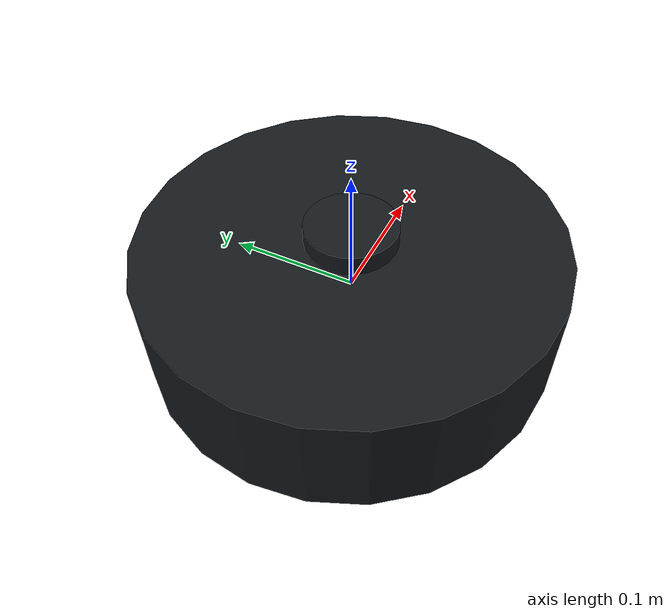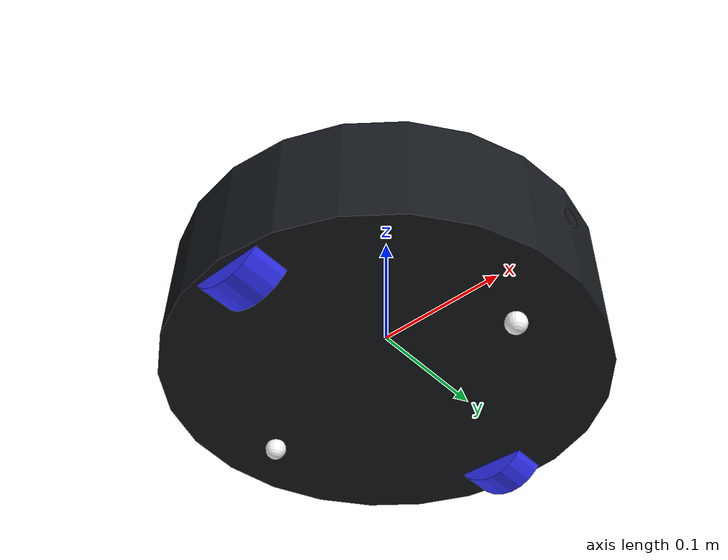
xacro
<?xml version="1.0"?>
<robot xmlns:xacro="http://www.ros.org/wiki/xacro"  name="robot">

    <xacro:arg name="use_ros2_control" default="true"/>
    <xacro:arg name="sim_mode" default="false"/>

    <xacro:include filename="robot_core.xacro" />

    <!-- Switch between ros2_control and Gazebo integrated diff-drive control -->
    <xacro:if value="$(arg use_ros2_control)">
        <xacro:include filename="ros2_control.xacro" />
    </xacro:if>
    <xacro:unless value="$(arg use_ros2_control)">
        <xacro:include filename="gazebo_control.xacro" />
    </xacro:unless>

    <xacro:include filename="lidar.xacro" />
    <xacro:include filename="camera.xacro" />

</robot>

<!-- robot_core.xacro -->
<robot xmlns:xacro="http://www.ros.org/wiki/xacro">

    <xacro:include filename="inertial_macros.xacro" />

    <material name="white">
        <color rgba="1 1 1 1"/>
    </material>

    <material name="blue">
        <color rgba="0.2 0.2 1 1"/>
    </material>

    <material name="black">
        <color rgba="0.082 0.098 0.114 1"/>
    </material>

    <link name="base_link">
    </link>

    <!-- BASE_FOOTPRINT -->

    <joint name="base_footprint_joint" type="fixed">
        <parent link="base_link"/>
        <child link="base_footprint"/>
    </joint>

    <link name="base_footprint">
    </link>

    <!-- CHASSIS -->

    <joint name="chassis_joint" type="fixed">
        <parent link="base_link"/>
        <child link="chassis"/>
    </joint>

    <link name="chassis">
        <visual>
            <geometry>
                <cylinder length="0.09" radius="0.16" />
            </geometry>
            <material name="black"/>
        </visual>
        <collision>
            <geometry>
                <cylinder length="0.09" radius="0.16" />
            </geometry>
        </collision>
        <xacro:inertial_cylinder mass="2.5" length="0.09" radius="0.16">
            <origin xyz="0 0 0" rpy="0 0 0"/>
        </xacro:inertial_cylinder>
    </link>

    <!-- LEFT WHEEL -->

    <joint name="left_wheel_joint" type="continuous">
        <parent link="base_link"/>
        <child link="left_wheel"/>
        <origin xyz="0 0.14 -0.025" rpy="-${pi/2} 0 0"/>
        <axis xyz="0 0 1"/>
        <limit effort="1.471" velocity="11.519"/>
    </joint>

    <link name="left_wheel">
        <visual>
            <geometry>
                <cylinder length="0.027" radius="0.0335" />
            </geometry>
            <material name="blue"/>
        </visual>
        <collision>
            <geometry>
                <cylinder length="0.027" radius="0.0335" />
            </geometry>
        </collision>
        <xacro:inertial_cylinder mass="0.055" length="0.027" radius="0.0335">
            <origin xyz="0 0 0" rpy="0 0 0"/>
        </xacro:inertial_cylinder>
    </link>

    <!-- RIGHT WHEEL -->

    <joint name="right_wheel_joint" type="continuous">
        <parent link="base_link"/>
        <child link="right_wheel"/>
        <origin xyz="0 -0.14 -0.025" rpy="${pi/2} 0 0"/>
        <axis xyz="0 0 -1"/>
        <limit effort="1.471" velocity="11.519"/>
    </joint>

    <link name="right_wheel">
        <visual>
            <geometry>
                <cylinder length="0.027" radius="0.0335" />
            </geometry>
            <material name="blue"/>
        </visual>
        <collision>
            <geometry>
                <cylinder length="0.027" radius="0.0335" />
            </geometry>
        </collision>
        <xacro:inertial_cylinder mass="0.055" length="0.027" radius="0.0335">
            <origin xyz="0 0 0" rpy="0 0 0"/>
        </xacro:inertial_cylinder>
    </link>

    <!-- FRONT CASTER -->

    <joint name="front_caster_joint" type="fixed">
        <parent link="chassis"/>
        <child link="front_caster"/>
        <origin xyz="0.11 0 -0.05006" rpy="0 0 0"/>
    </joint>

    <link name="front_caster">
        <visual>
            <geometry>
                <sphere radius="0.00794" />
            </geometry>
            <material name="white"/>
        </visual>
        <collision>
            <geometry>
                <sphere radius="0.00794" />
            </geometry>
        </collision>
        <xacro:inertial_sphere mass="0.04" radius="0.00794">
            <origin xyz="0 0 0" rpy="0 0 0"/>
        </xacro:inertial_sphere>
    </link>

    <gazebo reference="front_caster">
        <mu1 value="0.01"/>
        <mu2 value="0.01"/>
    </gazebo>

    <!-- REAR CASTER -->

    <joint name="rear_caster_joint" type="fixed">
        <parent link="chassis"/>
        <child link="rear_caster"/>
        <origin xyz="-0.11 0 -0.05006" rpy="0 0 0"/>
    </joint>

    <link name="rear_caster">
        <visual>
            <geometry>
                <sphere radius="0.00794" />
            </geometry>
            <material name="white"/>
        </visual>
        <collision>
            <geometry>
                <sphere radius="0.00794" />
            </geometry>
        </collision>
        <xacro:inertial_sphere mass="0.04" radius="0.00794">
            <origin xyz="0 0 0" rpy="0 0 0"/>
        </xacro:inertial_sphere>
    </link>

    <gazebo reference="rear_caster">
        <mu1 value="0.01"/>
        <mu2 value="0.01"/>
    </gazebo>

</robot>

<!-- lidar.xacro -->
<robot xmlns:xacro="http://www.ros.org/wiki/xacro" >

    <joint name="laser_joint" type="fixed">
        <parent link="chassis"/>
        <child link="laser_frame"/>
        <origin xyz="0 0 0.0485" rpy="0 0 3.14159"/>
    </joint>

    <link name="laser_frame">
        <visual>
            <geometry>
                <cylinder radius="0.035" length="0.024"/>
            </geometry>
            <material name="black"/>
        </visual>
        <collision>
            <geometry>
                <cylinder radius="0.035" length="0.024"/>
            </geometry>
        </collision>
        <xacro:inertial_cylinder mass="0.17" length="0.024" radius="0.035">
            <origin xyz="0 0 0" rpy="0 0 0"/>
        </xacro:inertial_cylinder>
    </link>

    <gazebo reference="laser_frame">
        <sensor name="laser" type="gpu_lidar">
            <pose> 0 0 0 0 0 0 </pose>
            <visualize>false</visualize>
            <update_rate>5.5</update_rate>
            <lidar>
                <scan>
                    <horizontal>
                        <samples>1450</samples>
                        <min_angle>-3.14</min_angle>
                        <max_angle>3.14</max_angle>
                    </horizontal>
                </scan>
                <range>
                    <min>0.15</min>
                    <max>12</max>
                </range>
            </lidar>
            <topic>scan</topic>
            <gz_frame_id>laser_frame</gz_frame_id>
        </sensor>
    </gazebo>

</robot>

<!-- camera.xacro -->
<robot xmlns:xacro="http://www.ros.org/wiki/xacro">

    <joint name="camera_joint" type="fixed">
        <parent link="chassis"/>
        <child link="camera_link"/>
        <origin xyz="0.160146 0 0.01525" rpy="0 0 0"/>
    </joint>

    <link name="camera_link">
        <visual>
            <origin xyz="0 0 0" rpy="0 ${pi/2} 0"/>
            <geometry>
                <cylinder length="0.0021" radius="0.00725" />
            </geometry>
            <material name="black"/>
        </visual>
    </link>

    <joint name="camera_optical_joint" type="fixed">
        <origin xyz="0 0 0" rpy="${-pi/2} 0 ${-pi/2}" />
        <parent link="camera_link" />
        <child link="camera_link_optical" />
    </joint>

    <link name="camera_link_optical"></link>

    <gazebo reference="camera_link">
        <sensor name="camera" type="camera">
            <pose> 0 0 0 0 0 0 </pose>
            <visualize>true</visualize>
            <update_rate>10</update_rate>
            <camera>
                <camera_info_topic>camera/camera_info</camera_info_topic>
                <horizontal_fov>1.0856</horizontal_fov>
                <image>
                    <format>R8G8B8</format>
                    <width>1920</width>
                    <height>1080</height>
                </image>
                <clip>
                    <near>0.05</near>
                    <far>8.0</far>
                </clip>
            </camera>
            <topic>camera/image_raw</topic>
            <gz_frame_id>camera_link_optical</gz_frame_id>
        </sensor>
    </gazebo>

</robot>
